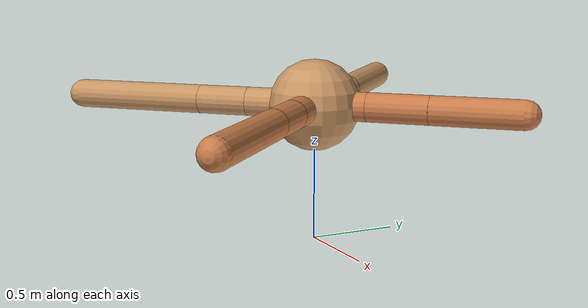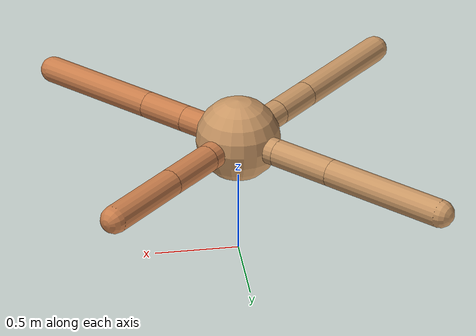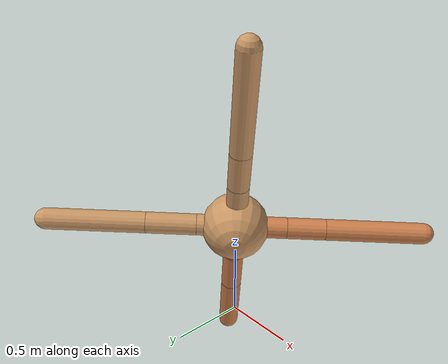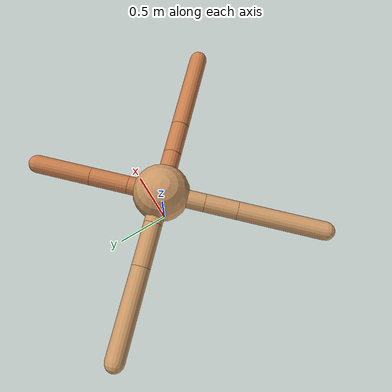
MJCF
<mujoco model="ant">
  <compiler angle="degree" coordinate="local" inertiafromgeom="true" />
  <option integrator="RK4" timestep="0.01" />
  <custom>
    <numeric data="0.0 0.0 0.55 1.0 0.0 0.0 0.0 0.0 1.0 0.0 -1.0 0.0 -1.0 0.0 1.0" name="init_qpos" />
  </custom>
  <default>
    <joint armature="1" damping="1" limited="true" />
    <geom conaffinity="0" condim="3" density="5.0" friction="1.5 0.1 0.1" margin="0.01" rgba="0.8 0.6 0.4 1" />
  </default>
  <worldbody>
    <body name="torso" pos="0 0 0.75">
      <geom name="torso_geom" pos="0 0 0" size="0.25" type="sphere" />

      <body name="front_left_leg" pos="0 0 0">
        <geom fromto="0.0 0.0 0.0 0.20910264534669787 0.20910264534669787 0.0" name="aux_1_geom" size="0.08" type="capsule" rgba=".8 .5 .3 1" />
        <body name="aux_1" pos="0.20910264534669787 0.20910264534669787 0.0">
          <joint axis="0 0 1" name="hip_1" pos="0.0 0.0 0.0" range="-40 40" type="hinge" />
          <geom fromto="0.0 0.0 0.0 0.23954893266427923 0.23954893266427923 0.0" name="left_leg_geom" size="0.08" type="capsule" rgba=".8 .5 .3 1" />
          <body pos="0.23954893266427923 0.23954893266427923 0.0" name="front_left_foot">
            <joint axis="-1 1 0" name="ankle_1" pos="0.0 0.0 0.0" range="30 100" type="hinge" />
            <geom fromto="0.0 0.0 0.0 0.3508881816449975 0.3508881816449975 0.0" name="left_ankle_geom" size="0.08" type="capsule" rgba=".8 .5 .3 1" />
          </body>
        </body>
      </body>
      <body name="front_right_leg" pos="0 0 0">
        <geom fromto="0.0 0.0 0.0 -0.20355629485461862 0.20355629485461862 0.0" name="aux_2_geom" size="0.08" type="capsule" />
        <body name="aux_2" pos="-0.20355629485461862 0.20355629485461862 0.0">
          <joint axis="0 0 1" name="hip_2" pos="0.0 0.0 0.0" range="-40 40" type="hinge" />
          <geom fromto="0.0 0.0 0.0 -0.2642950607720851 0.2642950607720851 0.0" name="right_leg_geom" size="0.08" type="capsule" />
          <body pos="-0.2642950607720851 0.2642950607720851 0.0" name="front_right_foot">
            <joint axis="1 1 0" name="ankle_2" pos="0.0 0.0 0.0" range="-100 -30" type="hinge" />
            <geom fromto="0.0 0.0 0.0 -0.5189880057338129 0.5189880057338129 0.0" name="right_ankle_geom" size="0.08" type="capsule" />
          </body>
        </body>
      </body>
      <body name="left_back_leg" pos="0 0 0">
        <geom fromto="0.0 0.0 0.0 -0.2715440810924776 -0.2715440810924776 0.0" name="aux_3_geom" size="0.08" type="capsule" />
        <body name="aux_3" pos="-0.2715440810924776 -0.2715440810924776 0.0">
          <joint axis="0 0 1" name="hip_3" pos="0.0 0.0 0.0" range="-40 40" type="hinge" />
          <geom fromto="0.0 0.0 0.0 -0.19991011604400916 -0.19991011604400916 0.0" name="back_leg_geom" size="0.08" type="capsule" />
          <body pos="-0.19991011604400916 -0.19991011604400916 0.0" name="left_back_foot">
            <joint axis="-1 1 0" name="ankle_3" pos="0.0 0.0 0.0" range="-100 -30" type="hinge" />
            <geom fromto="0.0 0.0 0.0 -0.5266770047160515 -0.5266770047160515 0.0" name="third_ankle_geom" size="0.08" type="capsule" />
          </body>
        </body>
      </body>
      <body name="right_back_leg" pos="0 0 0">
        <geom fromto="0.0 0.0 0.0 0.2699370317738375 -0.2699370317738375 0.0" name="aux_4_geom" size="0.08" type="capsule" rgba=".8 .5 .3 1" />
        <body name="aux_4" pos="0.2699370317738375 -0.2699370317738375 0.0">
          <joint axis="0 0 1" name="hip_4" pos="0.0 0.0 0.0" range="-40 40" type="hinge" />
          <geom fromto="0.0 0.0 0.0 0.20457626663340878 -0.20457626663340878 0.0" name="rightback_leg_geom" size="0.08" type="capsule" rgba=".8 .5 .3 1" />
          <body pos="0.20457626663340878 -0.20457626663340878 0.0" name="right_back_foot">
            <joint axis="1 1 0" name="ankle_4" pos="0.0 0.0 0.0" range="30 100" type="hinge" />
            <geom fromto="0.0 0.0 0.0 0.5283715392483149 -0.5283715392483149 0.0" name="fourth_ankle_geom" size="0.08" type="capsule" rgba=".8 .5 .3 1" />
          </body>
        </body>
      </body>
    </body>
  </worldbody>
  <actuator>
    <motor ctrllimited="true" ctrlrange="-1.0 1.0" joint="hip_4" gear="150" />
    <motor ctrllimited="true" ctrlrange="-1.0 1.0" joint="ankle_4" gear="150" />
    <motor ctrllimited="true" ctrlrange="-1.0 1.0" joint="hip_1" gear="150" />
    <motor ctrllimited="true" ctrlrange="-1.0 1.0" joint="ankle_1" gear="150" />
    <motor ctrllimited="true" ctrlrange="-1.0 1.0" joint="hip_2" gear="150" />
    <motor ctrllimited="true" ctrlrange="-1.0 1.0" joint="ankle_2" gear="150" />
    <motor ctrllimited="true" ctrlrange="-1.0 1.0" joint="hip_3" gear="150" />
    <motor ctrllimited="true" ctrlrange="-1.0 1.0" joint="ankle_3" gear="150" />
  </actuator>
</mujoco>
